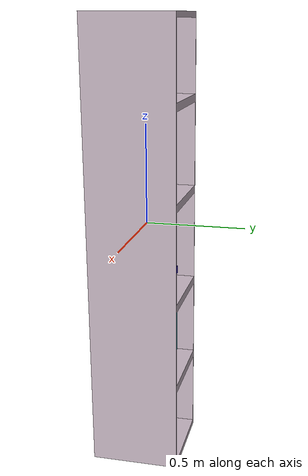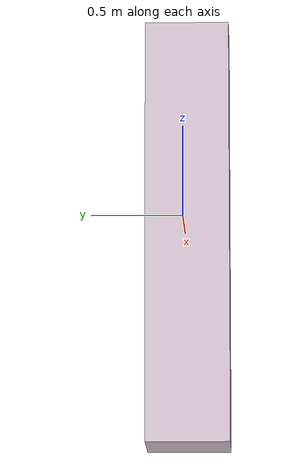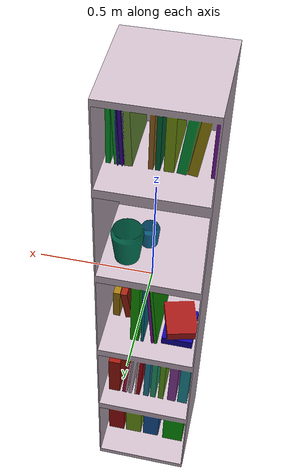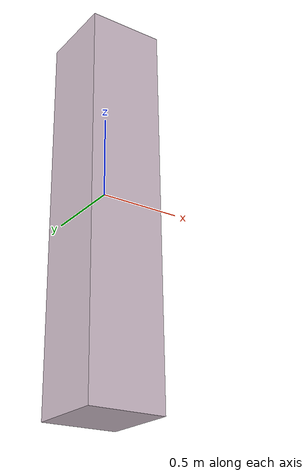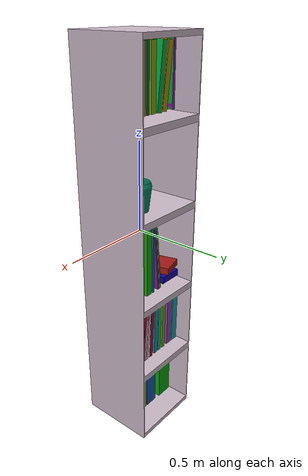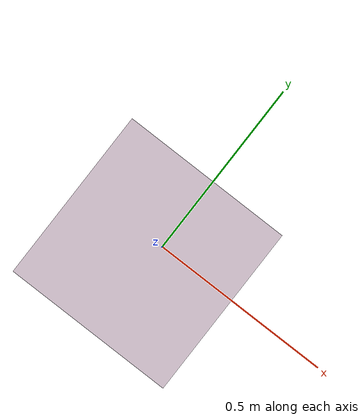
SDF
<?xml version='1.0'?>
<sdf version='1.5'>
    <model name="bookcase">
        <pose>0 0 0 0 0 0</pose>
        <static>false</static>
        <link name='model_body'>
            <visual name="visual">
                <geometry>
                    <mesh>
                        <uri>model://robert_gazebo/meshes/bookcase_visual.dae</uri>
                        <scale>1 1 1</scale>
                    </mesh>
                </geometry>
            </visual>

            <collision name="collision">
                <geometry>
                    <mesh>
                        <uri>model://robert_gazebo/meshes/bookcase_collision.dae</uri>
                        <scale>1 1 1</scale>
                    </mesh>
                </geometry>
            </collision>
            <inertial>
                <pose>0 0 0 0 0 0</pose>
                <inertia>
                    <ixx>4.16</ixx>
                    <ixy>0</ixy>
                    <ixz>0</ixz>
                    <iyy>4.09</iyy>
                    <iyz>0</iyz>
                    <izz>0.25</izz>
                </inertia>
                <mass>12.0</mass>
            </inertial>
        </link>
    </model>
</sdf>
